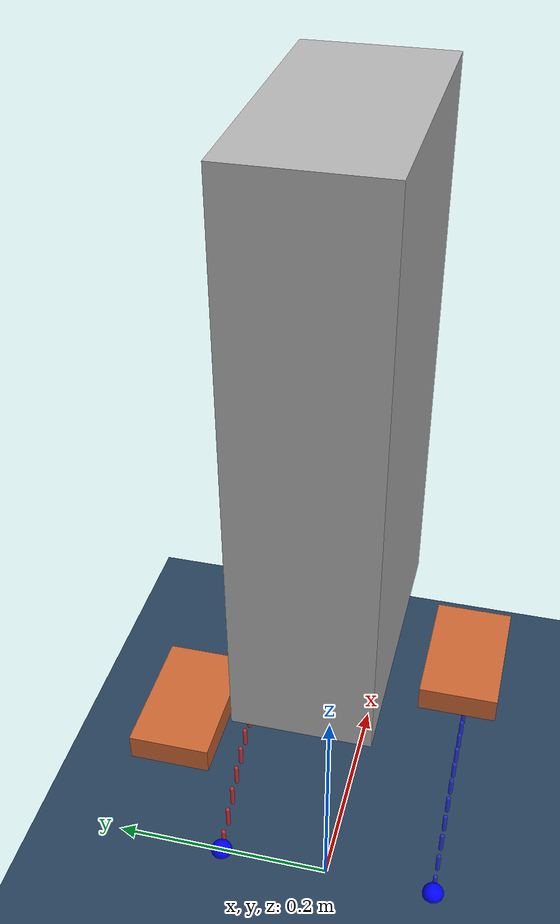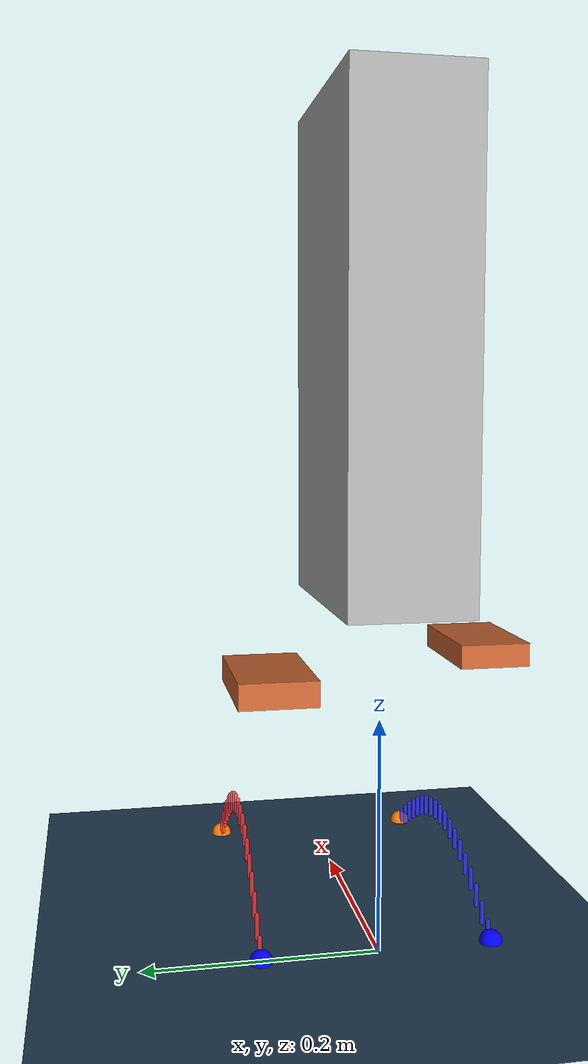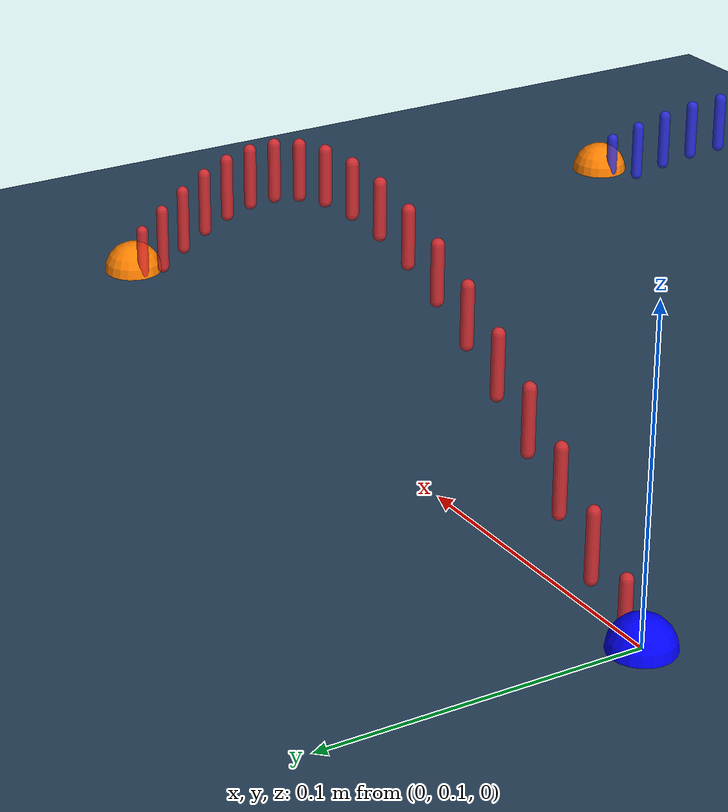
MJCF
<?xml version="1.0" ?>
<mujoco model="simple_trajectory_viewer">
    <compiler angle="degree"/>
    <option timestep="0.01" gravity="0 0 -9.81"/>

    <asset>
        <texture name="grid" type="2d" builtin="checker"
                 rgb1="0.1 0.2 0.3" rgb2="0.2 0.3 0.4" width="300" height="300"/>
        <material name="grid" texture="grid" texrepeat="8 8" reflectance="0.2"/>
    </asset>

    <worldbody>
        <light diffuse="0.5 0.5 0.5" pos="0 0 3" dir="0 0 -1"/>
        <geom name="floor" size="2 2 0.1" type="plane" material="grid"/>

        <!-- 简单机器人 -->
        <body name="robot" pos="0 0 0.5">
            <geom name="torso" type="box" size="0.1 0.05 0.2" rgba="0.7 0.7 0.7 1"/>
            <joint name="free_joint" type="free"/>

            <!-- 左脚 -->
            <geom name="left_foot" type="box" size="0.05 0.03 0.01"
                  pos="-0.05 0.1 -0.25" rgba="0.8 0.4 0.2 1"/>

            <!-- 右脚 -->
            <geom name="right_foot" type="box" size="0.05 0.03 0.01"
                  pos="0.05 -0.1 -0.25" rgba="0.8 0.4 0.2 1"/>
        </body>

        <!-- 轨迹可视化 -->

        <geom name="left_traj_0" type="capsule"
              size="0.002 0.010280"
              pos="0.007895 0.100000 0.006584"
              rgba="1.0 0.2 0.2 0.8" contype="0" conaffinity="0"/>
        <geom name="left_traj_1" type="capsule"
              size="0.002 0.010166"
              pos="0.023684 0.100000 0.019572"
              rgba="1.0 0.2 0.2 0.8" contype="0" conaffinity="0"/>
        <geom name="left_traj_2" type="capsule"
              size="0.002 0.009946"
              pos="0.039474 0.100000 0.032026"
              rgba="1.0 0.2 0.2 0.8" contype="0" conaffinity="0"/>
        <geom name="left_traj_3" type="capsule"
              size="0.002 0.009639"
              pos="0.055263 0.100000 0.043606"
              rgba="1.0 0.2 0.2 0.8" contype="0" conaffinity="0"/>
        <geom name="left_traj_4" type="capsule"
              size="0.002 0.009271"
              pos="0.071053 0.100000 0.053997"
              rgba="1.0 0.2 0.2 0.8" contype="0" conaffinity="0"/>
        <geom name="left_traj_5" type="capsule"
              size="0.002 0.008876"
              pos="0.086842 0.100000 0.062916"
              rgba="1.0 0.2 0.2 0.8" contype="0" conaffinity="0"/>
        <geom name="left_traj_6" type="capsule"
              size="0.002 0.008498"
              pos="0.102632 0.100000 0.070118"
              rgba="1.0 0.2 0.2 0.8" contype="0" conaffinity="0"/>
        <geom name="left_traj_7" type="capsule"
              size="0.002 0.008181"
              pos="0.118421 0.100000 0.075407"
              rgba="1.0 0.2 0.2 0.8" contype="0" conaffinity="0"/>
        <geom name="left_traj_8" type="capsule"
              size="0.002 0.007969"
              pos="0.134211 0.100000 0.078639"
              rgba="1.0 0.2 0.2 0.8" contype="0" conaffinity="0"/>
        <geom name="left_traj_9" type="capsule"
              size="0.002 0.007895"
              pos="0.150000 0.100000 0.079727"
              rgba="1.0 0.2 0.2 0.8" contype="0" conaffinity="0"/>
        <geom name="left_traj_10" type="capsule"
              size="0.002 0.007969"
              pos="0.165789 0.100000 0.078639"
              rgba="1.0 0.2 0.2 0.8" contype="0" conaffinity="0"/>
        <geom name="left_traj_11" type="capsule"
              size="0.002 0.008181"
              pos="0.181579 0.100000 0.075407"
              rgba="1.0 0.2 0.2 0.8" contype="0" conaffinity="0"/>
        <geom name="left_traj_12" type="capsule"
              size="0.002 0.008498"
              pos="0.197368 0.100000 0.070118"
              rgba="1.0 0.2 0.2 0.8" contype="0" conaffinity="0"/>
        <geom name="left_traj_13" type="capsule"
              size="0.002 0.008876"
              pos="0.213158 0.100000 0.062916"
              rgba="1.0 0.2 0.2 0.8" contype="0" conaffinity="0"/>
        <geom name="left_traj_14" type="capsule"
              size="0.002 0.009271"
              pos="0.228947 0.100000 0.053997"
              rgba="1.0 0.2 0.2 0.8" contype="0" conaffinity="0"/>
        <geom name="left_traj_15" type="capsule"
              size="0.002 0.009639"
              pos="0.244737 0.100000 0.043606"
              rgba="1.0 0.2 0.2 0.8" contype="0" conaffinity="0"/>
        <geom name="left_traj_16" type="capsule"
              size="0.002 0.009946"
              pos="0.260526 0.100000 0.032026"
              rgba="1.0 0.2 0.2 0.8" contype="0" conaffinity="0"/>
        <geom name="left_traj_17" type="capsule"
              size="0.002 0.010166"
              pos="0.276316 0.100000 0.019572"
              rgba="1.0 0.2 0.2 0.8" contype="0" conaffinity="0"/>
        <geom name="left_traj_18" type="capsule"
              size="0.002 0.010280"
              pos="0.292105 0.100000 0.006584"
              rgba="1.0 0.2 0.2 0.8" contype="0" conaffinity="0"/>
        <geom name="right_traj_0" type="capsule"
              size="0.002 0.009312"
              pos="0.007895 -0.100000 0.004938"
              rgba="0.2 0.2 1.0 0.8" contype="0" conaffinity="0"/>
        <geom name="right_traj_1" type="capsule"
              size="0.002 0.009241"
              pos="0.023684 -0.100000 0.014679"
              rgba="0.2 0.2 1.0 0.8" contype="0" conaffinity="0"/>
        <geom name="right_traj_2" type="capsule"
              size="0.002 0.009106"
              pos="0.039474 -0.100000 0.024019"
              rgba="0.2 0.2 1.0 0.8" contype="0" conaffinity="0"/>
        <geom name="right_traj_3" type="capsule"
              size="0.002 0.008918"
              pos="0.055263 -0.100000 0.032705"
              rgba="0.2 0.2 1.0 0.8" contype="0" conaffinity="0"/>
        <geom name="right_traj_4" type="capsule"
              size="0.002 0.008696"
              pos="0.071053 -0.100000 0.040498"
              rgba="0.2 0.2 1.0 0.8" contype="0" conaffinity="0"/>
        <geom name="right_traj_5" type="capsule"
              size="0.002 0.008461"
              pos="0.086842 -0.100000 0.047187"
              rgba="0.2 0.2 1.0 0.8" contype="0" conaffinity="0"/>
        <geom name="right_traj_6" type="capsule"
              size="0.002 0.008239"
              pos="0.102632 -0.100000 0.052588"
              rgba="0.2 0.2 1.0 0.8" contype="0" conaffinity="0"/>
        <geom name="right_traj_7" type="capsule"
              size="0.002 0.008057"
              pos="0.118421 -0.100000 0.056555"
              rgba="0.2 0.2 1.0 0.8" contype="0" conaffinity="0"/>
        <geom name="right_traj_8" type="capsule"
              size="0.002 0.007937"
              pos="0.134211 -0.100000 0.058980"
              rgba="0.2 0.2 1.0 0.8" contype="0" conaffinity="0"/>
        <geom name="right_traj_9" type="capsule"
              size="0.002 0.007895"
              pos="0.150000 -0.100000 0.059795"
              rgba="0.2 0.2 1.0 0.8" contype="0" conaffinity="0"/>
        <geom name="right_traj_10" type="capsule"
              size="0.002 0.007937"
              pos="0.165789 -0.100000 0.058980"
              rgba="0.2 0.2 1.0 0.8" contype="0" conaffinity="0"/>
        <geom name="right_traj_11" type="capsule"
              size="0.002 0.008057"
              pos="0.181579 -0.100000 0.056555"
              rgba="0.2 0.2 1.0 0.8" contype="0" conaffinity="0"/>
        <geom name="right_traj_12" type="capsule"
              size="0.002 0.008239"
              pos="0.197368 -0.100000 0.052588"
              rgba="0.2 0.2 1.0 0.8" contype="0" conaffinity="0"/>
        <geom name="right_traj_13" type="capsule"
              size="0.002 0.008461"
              pos="0.213158 -0.100000 0.047187"
              rgba="0.2 0.2 1.0 0.8" contype="0" conaffinity="0"/>
        <geom name="right_traj_14" type="capsule"
              size="0.002 0.008696"
              pos="0.228947 -0.100000 0.040498"
              rgba="0.2 0.2 1.0 0.8" contype="0" conaffinity="0"/>
        <geom name="right_traj_15" type="capsule"
              size="0.002 0.008918"
              pos="0.244737 -0.100000 0.032705"
              rgba="0.2 0.2 1.0 0.8" contype="0" conaffinity="0"/>
        <geom name="right_traj_16" type="capsule"
              size="0.002 0.009106"
              pos="0.260526 -0.100000 0.024019"
              rgba="0.2 0.2 1.0 0.8" contype="0" conaffinity="0"/>
        <geom name="right_traj_17" type="capsule"
              size="0.002 0.009241"
              pos="0.276316 -0.100000 0.014679"
              rgba="0.2 0.2 1.0 0.8" contype="0" conaffinity="0"/>
        <geom name="right_traj_18" type="capsule"
              size="0.002 0.009312"
              pos="0.292105 -0.100000 0.004938"
              rgba="0.2 0.2 1.0 0.8" contype="0" conaffinity="0"/>
        <!-- 起点标记 -->
        <geom name="left_start" type="sphere" size="0.01"
              pos="0.000000 0.100000 0.000000"
              rgba="0.0 0.0 1.0 1.0" contype="0" conaffinity="0"/>
        <geom name="right_start" type="sphere" size="0.01"
              pos="0.000000 -0.100000 0.000000"
              rgba="0.0 0.0 1.0 1.0" contype="0" conaffinity="0"/>

        <!-- 终点标记 -->
        <geom name="left_end" type="sphere" size="0.01"
              pos="0.300000 0.100000 0.000000"
              rgba="1.0 0.5 0.0 1.0" contype="0" conaffinity="0"/>
        <geom name="right_end" type="sphere" size="0.01"
              pos="0.300000 -0.100000 0.000000"
              rgba="1.0 0.5 0.0 1.0" contype="0" conaffinity="0"/>
    </worldbody>
</mujoco>
